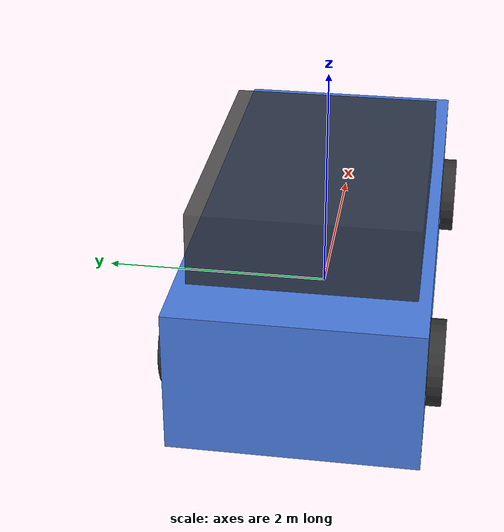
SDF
<?xml version="1.0" ?>
<sdf version="1.8">
  <model name="simple_car">
    <link name="chassis">
      <pose>0 0 0.3 0 0 0</pose>

      <!-- Main body -->
      <visual name="body">
        <geometry>
          <box><size>4.5 2.0 1.2</size></box>
        </geometry>
        <material>
          <ambient>0.2 0.4 0.8 1</ambient>
          <diffuse>0.3 0.5 0.9 1</diffuse>
          <specular>0.5 0.5 0.5 1</specular>
        </material>
      </visual>

      <collision name="body_collision">
        <geometry>
          <box><size>4.5 2.0 1.2</size></box>
        </geometry>
      </collision>

      <!-- Cabin -->
      <visual name="cabin">
        <pose>-0.5 0 0.8 0 0 0</pose>
        <geometry>
          <box><size>2.5 1.8 0.8</size></box>
        </geometry>
        <material>
          <ambient>0.1 0.1 0.1 0.8</ambient>
          <diffuse>0.2 0.2 0.2 0.8</diffuse>
        </material>
      </visual>

      <!-- Wheels -->
      <visual name="wheel_fl">
        <pose>1.5 1.0 -0.1 1.5707 0 0</pose>
        <geometry>
          <cylinder><radius>0.35</radius><length>0.25</length></cylinder>
        </geometry>
        <material>
          <ambient>0.1 0.1 0.1 1</ambient>
          <diffuse>0.2 0.2 0.2 1</diffuse>
        </material>
      </visual>

      <visual name="wheel_fr">
        <pose>1.5 -1.0 -0.1 1.5707 0 0</pose>
        <geometry>
          <cylinder><radius>0.35</radius><length>0.25</length></cylinder>
        </geometry>
        <material>
          <ambient>0.1 0.1 0.1 1</ambient>
          <diffuse>0.2 0.2 0.2 1</diffuse>
        </material>
      </visual>

      <visual name="wheel_rl">
        <pose>-1.5 1.0 -0.1 1.5707 0 0</pose>
        <geometry>
          <cylinder><radius>0.35</radius><length>0.25</length></cylinder>
        </geometry>
        <material>
          <ambient>0.1 0.1 0.1 1</ambient>
          <diffuse>0.2 0.2 0.2 1</diffuse>
        </material>
      </visual>

      <visual name="wheel_rr">
        <pose>-1.5 -1.0 -0.1 1.5707 0 0</pose>
        <geometry>
          <cylinder><radius>0.35</radius><length>0.25</length></cylinder>
        </geometry>
        <material>
          <ambient>0.1 0.1 0.1 1</ambient>
          <diffuse>0.2 0.2 0.2 1</diffuse>
        </material>
      </visual>

      <inertial>
        <mass>1500</mass>
        <inertia>
          <ixx>500</ixx>
          <iyy>1000</iyy>
          <izz>500</izz>
        </inertia>
      </inertial>
    </link>

    <!-- Velocity control plugin -->
    <plugin filename="gz-sim-velocity-control-system" name="gz::sim::systems::VelocityControl">
      <initial_linear>0 0 0</initial_linear>
      <initial_angular>0 0 0</initial_angular>
    </plugin>
  </model>
</sdf>
